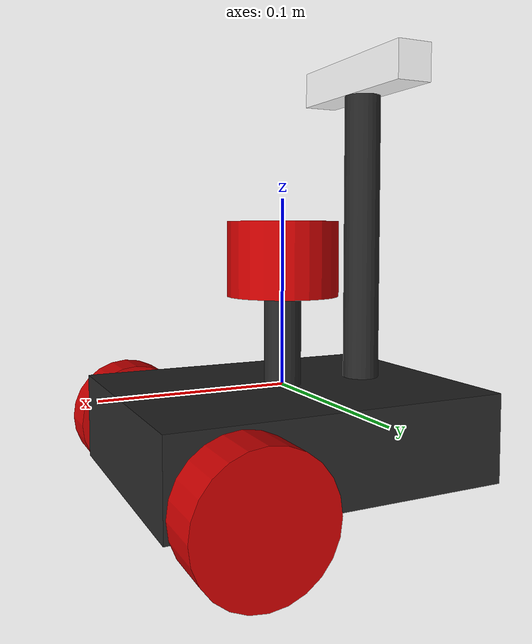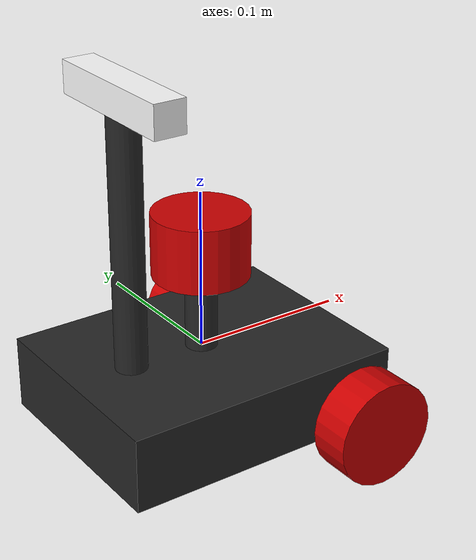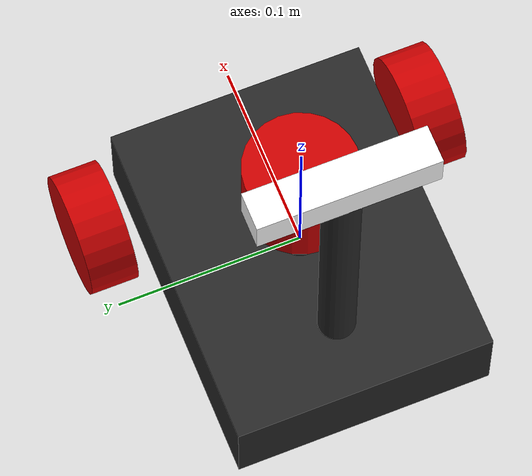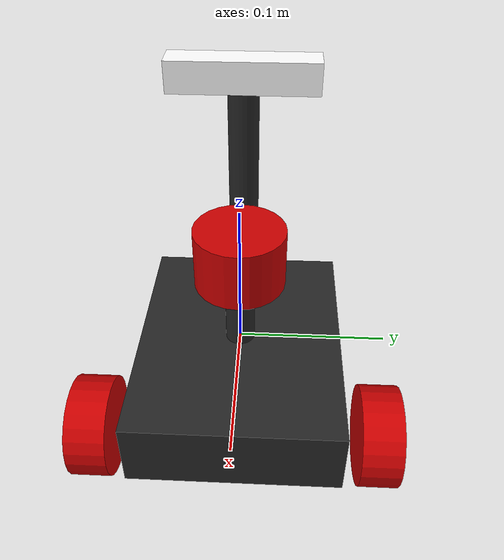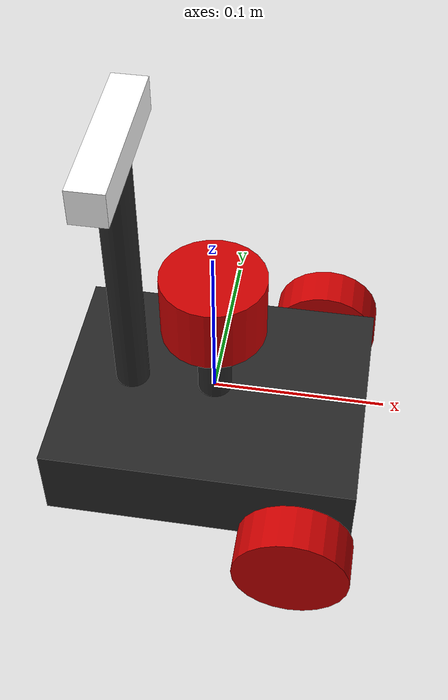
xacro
<?xml version="1.0" ?>
<robot name="tbot" xmlns:xacro="http://ros.org/wiki/xacro">

  <!-- https://en.wikipedia.org/wiki/List_of_moments_of_inertia#List_of_3D_inertia_tensors -->
  <xacro:include filename="inertial_macros.xacro"/>

  <xacro:arg name="is_sim" default="false"/>

  <xacro:property name="PI" value="3.1415926535897931"/>

  <xacro:property name="footprint_vertical_offset" value="0.0085" />

  <xacro:property name="chassis_length" value="0.18" />
  <xacro:property name="chassis_width" value="0.14" />
  <xacro:property name="chassis_height" value="0.047" />
  <xacro:property name="chassis_mass" value="0.7" />

  <xacro:property name="wheel_radius" value="0.033" />
  <xacro:property name="wheel_width" value="0.026" />
  <xacro:property name="wheel_mass" value="0.035" />
  <xacro:property name="wheel_separation" value="${chassis_width + 0.023*2}" />

  <xacro:property name="ball_caster_radius" value="0.008" />
  <xacro:property name="ball_caster_mass" value="0.00396" />

  <material name="dark_grey"><color rgba="0.2 0.2 0.2 1.0" /></material>
  <material name="light_grey"><color rgba="0.4 0.4 0.4 1.0" /></material>
  <material name="yellow"><color rgba="0.8 0.8 0.0 1.0" /></material>
  <material name="black"><color rgba="0.15 0.15 0.15 1.0" /></material>
  <material name="blue"><color rgba="0.0 0.0 0.8 1.0"/></material>
  <material name="red"><color rgba="0.8 0.0 0.0 1.0"/></material>
  <material name="green"><color rgba="0.0 0.8 0.0 1.0"/></material>
  <material name="white"><color rgba="1.0 1.0 1.0 1.0"/></material>

  <xacro:macro name="wheel" params="prefix *joint_pose">

    <link name="${prefix}_wheel_link">
      <visual>
        <origin xyz="0 0 0" rpy="${PI/2} 0 0"/>
        <geometry>
          <cylinder radius="${wheel_radius}" length="${wheel_width}"/>
        </geometry>
        <material name="red"/>
      </visual>

      <collision>
        <origin xyz="0 0 0" rpy="${PI/2} 0 0"/>
        <geometry>
          <cylinder radius="${wheel_radius}" length="${wheel_width}"/>
        </geometry>
      </collision>

      <inertial>
        <origin xyz="0.0 0.0 0.0" rpy="0 0 0"/>
        <mass value="${wheel_mass}"/>
        <inertia
          ixx="${(1/12) * wheel_mass * (3*wheel_radius*wheel_radius + wheel_width*wheel_width)}" ixy="0.0" ixz="0.0"
          iyy="${(1/12) * wheel_mass * (3*wheel_radius*wheel_radius + wheel_width*wheel_width)}" iyz="0.0"
          izz="${(1/12) * wheel_mass * (3*wheel_radius*wheel_radius + wheel_width*wheel_width)}"/>
      </inertial>
    </link>

    <joint name="${prefix}_wheel_joint" type="continuous">
      <parent link="chassis_link"/>
      <child link="${prefix}_wheel_link"/>
      <xacro:insert_block name="joint_pose" />
      <axis xyz="0 1 0"/>
    </joint>

  </xacro:macro>

  <link name="base_link"></link>

  <link name="base_footprint"></link>
  <joint name="base_footprint_joint" type="fixed">
    <origin xyz="0 0 ${-1 *(footprint_vertical_offset + chassis_height/2)}" rpy="0 0 0"/>
    <parent link="base_footprint"/>
    <child link="base_link"/>
  </joint>

  <joint name="chassis_joint" type="fixed">
    <origin xyz="0 0 0" rpy="0 0 0"/>
    <parent link="base_link"/>
    <child link="chassis_link"/>
  </joint>

  <link name="chassis_link" >
    <visual>
      <origin xyz="0 0 ${footprint_vertical_offset}" rpy="0 0 0"/>
      <geometry>
        <box size="${chassis_length} ${chassis_width} ${chassis_height}"/>
      </geometry>
      <material name="black"/>
    </visual>

    <collision>
      <origin xyz="0 0 ${chassis_height/2}" rpy="0 0 0"/>
      <geometry>
        <box size="${chassis_length} ${chassis_width} ${chassis_height}"/>
      </geometry>
    </collision>

    <inertial>
      <origin xyz="0.0 0.0 0.0" rpy="0 0 0"/>
      <mass value="${chassis_mass}"/>
      <inertia
        ixx="${(1/12) * chassis_mass * (chassis_width*chassis_width+chassis_height*chassis_height)}" ixy="0.0" ixz="0.0"
        iyy="${(1/12) * chassis_mass * (chassis_length*chassis_length+chassis_height*chassis_height)}" iyz="0.0"
        izz="${(1/12) * chassis_mass * (chassis_length*chassis_length+chassis_width*chassis_width)}" />
      </inertial>
  </link>

  <xacro:wheel prefix="left">
    <origin xyz="${chassis_length/2 - 0.031} ${chassis_width/2 + 0.023} 0" rpy="0 0 0" />
  </xacro:wheel>

  <xacro:wheel prefix="right">
    <origin xyz="${chassis_length/2 - 0.031} -${chassis_width/2 + 0.023} 0" rpy="0 0 0" />
  </xacro:wheel>

  <link name="ball_caster_link">
    <visual>
      <geometry>
        <sphere radius="${ball_caster_radius}"/>
      </geometry>
      <material name="white"/>
    </visual>
    <collision>
      <geometry>
        <sphere radius="${ball_caster_radius}"/>
      </geometry>
    </collision>
    <inertial>
      <mass value="${ball_caster_mass}"/>
      <inertia
        ixx="${(2/5) * ball_caster_mass * (ball_caster_radius * ball_caster_radius)}" ixy="0" ixz="0"
        iyy="${(2/5) * ball_caster_mass * (ball_caster_radius * ball_caster_radius)}" iyz="0"
        izz="${(2/5) * ball_caster_mass * (ball_caster_radius * ball_caster_radius)}"/>
    </inertial>
  </link>

  <joint name="ball_caster_joint" type="fixed">
    <origin xyz="-${chassis_length/2 - 0.034} 0 -${wheel_radius - ball_caster_radius}" rpy="0 0 0"/>
    <parent link="chassis_link"/>
    <child link="ball_caster_link"/>
  </joint>

  <xacro:if value="$(arg is_sim)">
    <xacro:include filename="$(find tbot_description)/urdf/tbot.gazebo" />
  </xacro:if>

  <xacro:include filename="$(find tbot_description)/urdf/accessories.urdf.xacro" />

</robot>

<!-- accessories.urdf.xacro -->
<robot xmlns:xacro="http://ros.org/wiki/xacro">
  <!-- accessories -->

  <link name="imu_link"></link>
  <joint name="imu_joint" type="fixed">
    <parent link="chassis_link"/>
    <child link="imu_link"/>
    <origin xyz="0 0 0" rpy="0 0 0"/>
  </joint>

  <!-- depth camera -->
  <link name="camera_link">
      <visual>
          <geometry>
              <box size="0.02 0.095 0.02"/>
          </geometry>
          <material name="white"/>
      </visual>
      <visual>
        <origin xyz="0 0 -0.1"/>
        <geometry>
            <cylinder radius="0.01" length="0.2"/>
        </geometry>
        <material name="black"/>
      </visual>
  </link>
  <joint name="camera_joint" type="fixed">
      <parent link="chassis_link"/>
      <child link="camera_link"/>
      <origin xyz="-0.05 0 0.2" rpy="0 0 0"/>
  </joint>

  <link name="camera_optical_link"></link>
  <joint name="camera_optical_joint" type="fixed">
      <parent link="camera_link"/>
      <child link="camera_optical_link"/>
      <origin xyz="0 0 0" rpy="${-pi/2} 0 ${-pi/2}"/>
  </joint>

  <link name="camera_depth_link"></link>
  <joint name="camera_depth_joint" type="fixed">
      <parent link="camera_link"/>
      <child link="camera_depth_link"/>
      <origin xyz="0 0 0" rpy="${-pi/2} 0 ${-pi/2}"/>
  </joint>

  <!-- lidar -->
  <link name="base_scan">
    <visual>
      <geometry>
        <cylinder radius="0.03" length="0.04"/>
      </geometry>
      <material name="red"/>
    </visual>
    <visual>
      <origin xyz="0 0 -0.05"/>
      <geometry>
          <cylinder radius="0.01" length="0.1"/>
      </geometry>
      <material name="black"/>
    </visual>
    <collision>
      <geometry>
        <cylinder radius="0.05" length="0.04"/>
      </geometry>
    </collision>
    <xacro:inertial_cylinder mass="0.1" length="0.04" radius="0.05">
        <origin xyz="0 0 0" rpy="0 0 0"/>
    </xacro:inertial_cylinder>
  </link>

  <joint name="laser_joint" type="fixed">
    <origin xyz="0 0 0.1" rpy="0 0 0"/>
    <parent link="chassis_link"/>
    <child link="base_scan"/>
  </joint>

</robot>
